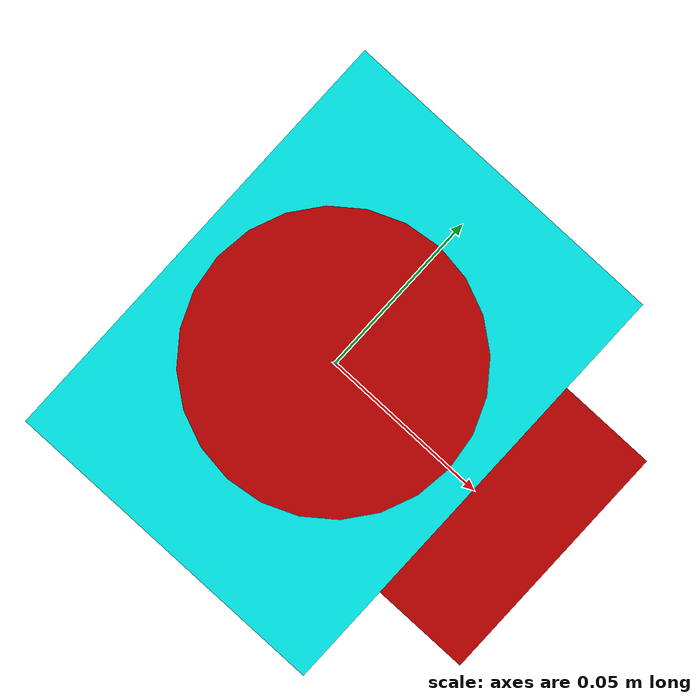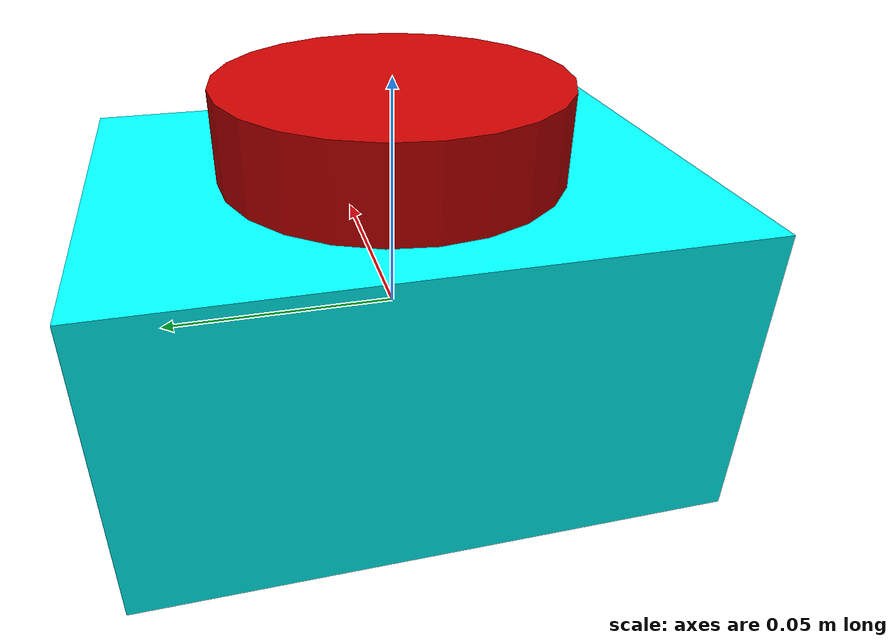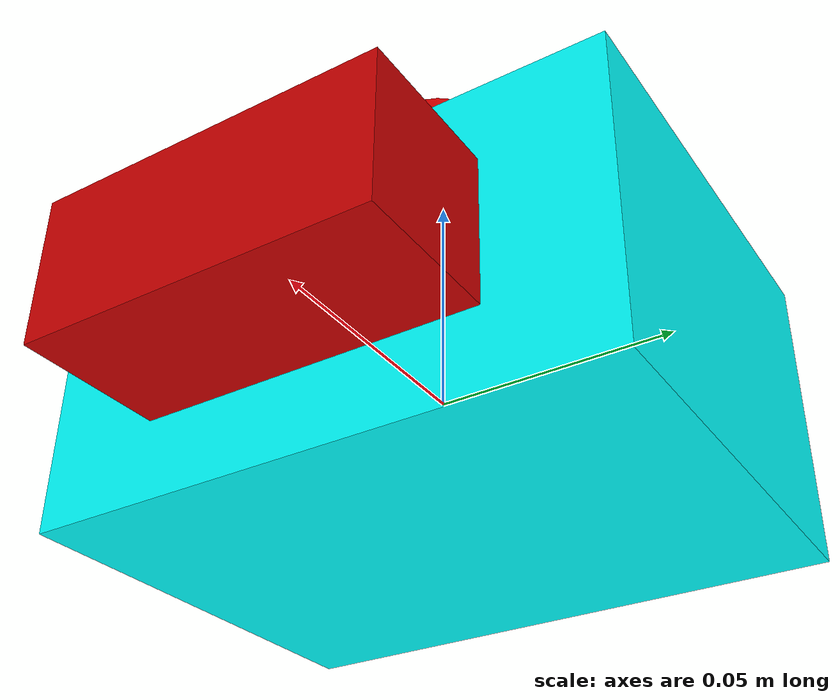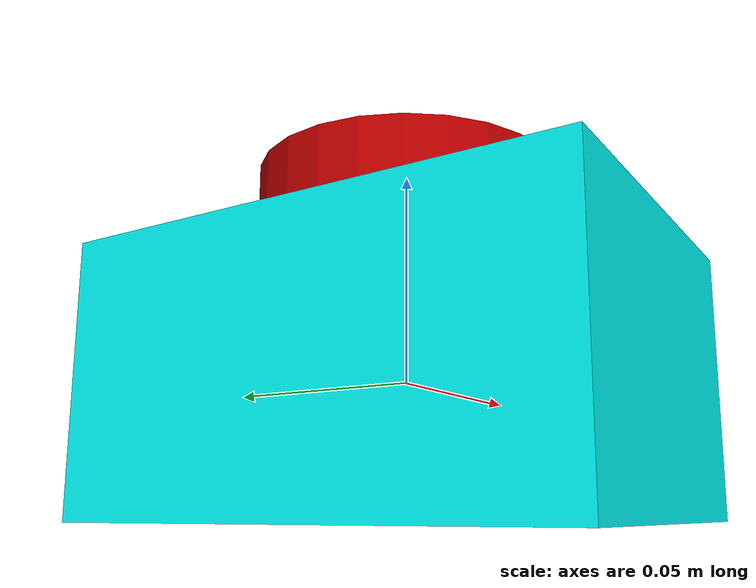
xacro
<?xml version="1.0"?>
<robot xmlns:xacro="http://www.ros.org/wiki/xacro" name="push_mapping">

	<material name="red">
    <color rgba="0.8 0.0 0.0 1.0"/>
  </material>

  <material name="silver">
    <color rgba="0.8 0.8 0.8 1.0"/>
  </material>

	<link name='base_link'>
		<visual>
			<geometry>
				<box size='0.090 0.120 0.063'/>
			</geometry>
			<material name='cyan'>
				<color rgba='0 1.0 1.0 1.0'/>
			</material>
		</visual>
		<collision>
      <geometry>
      	<box size='0.090 0.120 0.063'/>
      </geometry>
    </collision>
  </link>

  <link name="base_footprint"/>

  <joint name="base_joint" type="fixed">
    <parent link="base_link"/>
    <child link="base_footprint"/>
    <origin xyz="0.0 0.0 -0.0315" rpy="0 0 0"/>
  </joint>

  <!-- LiDAR -->
  <link name="base_scan">
    <visual>
      <geometry>
        <cylinder radius="0.035" length="0.02"/>
      </geometry>
      <material name="red"/>
    </visual>
    <collision>
      <geometry>
        <cylinder radius="0.035" length="0.02"/>
      </geometry>
    </collision>
  </link>

  <!-- Fixed Joint for LiDAR -->
  <joint name="base_scan_joint" type="fixed">
    <parent link="base_link"/>
    <child link="base_scan"/>
    <origin xyz="0 0 0.04" rpy="0 0 0"/>
  </joint>

  <!-- Camera -->
  <link name="camera_link">
    <visual>
      <geometry>
        <box size="0.03 0.07 0.03"/>
      </geometry>
      <material name="red"/>
    </visual>
    <collision>
      <geometry>
        <box size="0.03 0.07 0.03"/>
      </geometry>
    </collision>
  </link>

  <!-- Fixed Joint for Camera -->
  <joint name="camera_joint" type="fixed">
    <parent link="base_link"/>
    <child link="camera_link"/>
    <origin xyz="0.06 0 0" rpy="0 0 0"/>
  </joint>
</robot>
